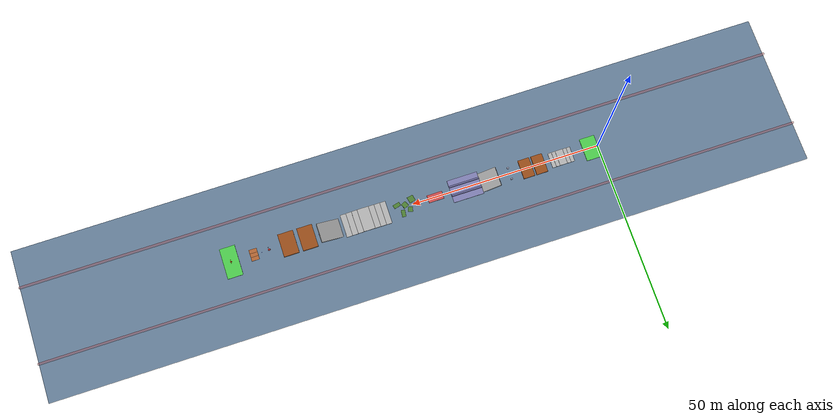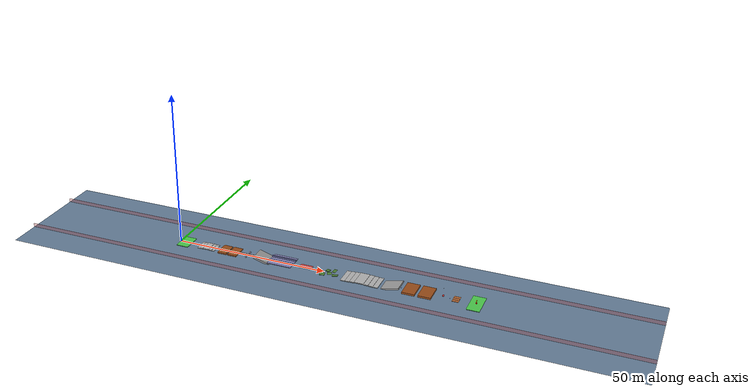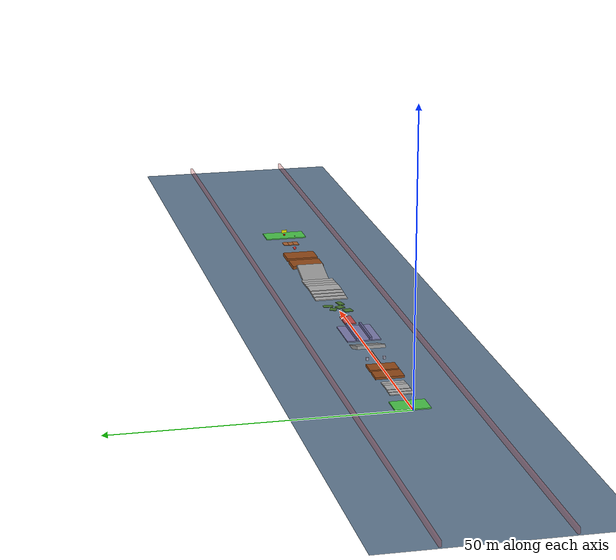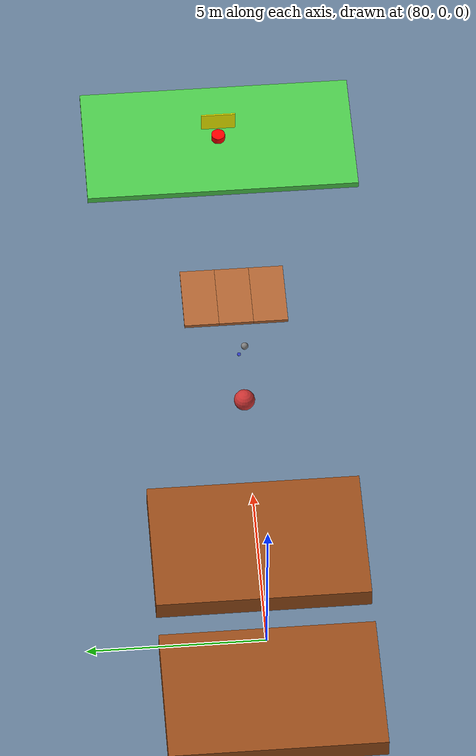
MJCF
<mujoco model="parkour_course">
  <compiler angle="radian" coordinate="local" inertiafromgeom="true"/>

  <option timestep="0.001" iterations="50" solver="PGS" gravity="0 0 -9.81"/>

  <size nconmax="1000" njmax="5000" nstack="1000000"/>

  <default>
    <geom conaffinity="1" contype="1" density="1000" friction="0.8 0.1 0.1"/>
    <joint armature="0" damping="0" limited="false"/>
  </default>

  <asset>
    <texture builtin="gradient" height="100" rgb1="0.4 0.6 1" rgb2="0 0 0.4" type="skybox" width="100"/>
    <texture builtin="flat" height="1278" mark="cross" markrgb="1 1 1" name="texgeom" random="0.01" rgb1="0.8 0.6 0.4" rgb2="0.8 0.6 0.4" type="cube" width="127"/>
    <texture builtin="checker" height="100" name="texplane" rgb1="0.2 0.3 0.4" rgb2="0.1 0.2 0.3" type="2d" width="100"/>
    <texture builtin="flat" name="texwood" rgb1="0.6 0.3 0.1" type="2d" width="100" height="100"/>
    <texture builtin="flat" name="texmetal" rgb1="0.7 0.7 0.8" type="2d" width="100" height="100"/>
    <texture builtin="flat" name="texgrass" rgb1="0.2 0.6 0.2" type="2d" width="100" height="100"/>
    <texture builtin="flat" name="texconcrete" rgb1="0.6 0.6 0.6" type="2d" width="100" height="100"/>

    <material name="MatPlane" reflectance="0.3" shininess="1" specular="1" texrepeat="60 60" texture="texplane"/>
    <material name="MatWood" reflectance="0.1" shininess="0.1" specular="0.1" texrepeat="3 3" texture="texwood"/>
    <material name="MatMetal" reflectance="0.8" shininess="1" specular="1" texrepeat="1 1" texture="texmetal"/>
    <material name="MatGrass" reflectance="0.1" shininess="0.1" specular="0.1" texrepeat="10 10" texture="texgrass"/>
    <material name="MatConcrete" reflectance="0.2" shininess="0.3" specular="0.3" texrepeat="5 5" texture="texconcrete"/>
  </asset>

  <worldbody>
    <light cutoff="100" diffuse="1 1 1" dir="-0.2 -0.2 -1" directional="true" exponent="1" pos="0 0 3" specular=".3 .3 .3"/>
    <light cutoff="50" diffuse="0.8 0.8 1" dir="0.5 0.5 -1" directional="true" exponent="1" pos="50 0 2" specular=".2 .2 .3"/>

    <!-- Main ground plane -->
    <geom conaffinity="1" condim="3" material="MatPlane" name="course_floor" pos="50 0 0" rgba="0.4 0.5 0.6 1" size="100 20 0.125" type="plane"/>

    <!-- Starting platform -->
    <geom name="start_platform" type="box" pos="2 0 0.1" size="2 3 0.1" material="MatConcrete" rgba="0.3 0.8 0.3 1"/>
    <geom name="start_marker" type="cylinder" pos="2 0 0.25" size="0.1 0.05" rgba="0 1 0 1"/>

    <!-- Obstacle 1: Small stairs -->
    <geom name="stair1_1" type="box" pos="8 0 0.075" size="1 2 0.075" material="MatConcrete" rgba="0.7 0.7 0.7 1"/>
    <geom name="stair1_2" type="box" pos="9 0 0.15" size="1 2 0.075" material="MatConcrete" rgba="0.7 0.7 0.7 1"/>
    <geom name="stair1_3" type="box" pos="10 0 0.225" size="1 2 0.075" material="MatConcrete" rgba="0.7 0.7 0.7 1"/>
    <geom name="stair1_4" type="box" pos="11 0 0.15" size="1 2 0.075" material="MatConcrete" rgba="0.7 0.7 0.7 1"/>
    <geom name="stair1_5" type="box" pos="12 0 0.075" size="1 2 0.075" material="MatConcrete" rgba="0.7 0.7 0.7 1"/>

    <!-- Obstacle 2: Gap jump -->
    <geom name="gap_platform1" type="box" pos="16 0 0.2" size="1.5 2.5 0.2" material="MatWood" rgba="0.6 0.3 0.1 1"/>
    <geom name="gap_platform2" type="box" pos="19.5 0 0.2" size="1.5 2.5 0.2" material="MatWood" rgba="0.6 0.3 0.1 1"/>

    <!-- Obstacle 3: Balance beam -->
    <geom name="beam_support1" type="box" pos="24 -1.5 0.25" size="0.2 0.2 0.25" material="MatMetal" rgba="0.7 0.7 0.8 1"/>
    <geom name="beam_support2" type="box" pos="24 1.5 0.25" size="0.2 0.2 0.25" material="MatMetal" rgba="0.7 0.7 0.8 1"/>
    <geom name="balance_beam" type="box" pos="24 0 0.5" size="3 0.05 0.05" material="MatWood" rgba="0.8 0.4 0.2 1"/>

    <!-- Obstacle 4: Ramp up -->
    <geom name="ramp_up" type="box" pos="30 0 0.3" size="3 2.5 0.3" material="MatConcrete" rgba="0.6 0.6 0.6 1" euler="0 0.3 0"/>

    <!-- Obstacle 5: Elevated platform with narrow passage -->
    <geom name="elevated_platform" type="box" pos="36 0 0.6" size="4 3 0.1" material="MatConcrete" rgba="0.5 0.5 0.7 1"/>
    <geom name="wall_left" type="box" pos="36 1.2 0.9" size="4 0.2 0.3" material="MatConcrete" rgba="0.4 0.4 0.6 1"/>
    <geom name="wall_right" type="box" pos="36 -1.2 0.9" size="4 0.2 0.3" material="MatConcrete" rgba="0.4 0.4 0.6 1"/>

    <!-- Obstacle 6: Moving platform (static for now, will be animated in code) -->
    <body name="moving_platform" pos="44 0 0.3">
      <joint name="platform_slide" type="slide" axis="0 1 0" range="-2 2" damping="10"/>
      <geom name="moving_plat_geom" type="box" size="2 1 0.1" material="MatMetal" rgba="0.8 0.3 0.3 1"/>
      <inertial pos="0 0 0" mass="100" diaginertia="10 10 10"/>
    </body>

    <!-- Obstacle 7: Rough terrain -->
    <geom name="rough1" type="box" pos="50 -1.5 0.05" size="0.8 0.8 0.05" material="MatGrass" rgba="0.3 0.5 0.2 1" euler="0 0 0.2"/>
    <geom name="rough2" type="box" pos="51 1 0.08" size="0.6 0.6 0.08" material="MatGrass" rgba="0.3 0.5 0.2 1" euler="0 0 -0.3"/>
    <geom name="rough3" type="box" pos="52 -0.5 0.06" size="0.7 0.7 0.06" material="MatGrass" rgba="0.3 0.5 0.2 1" euler="0 0 0.4"/>
    <geom name="rough4" type="box" pos="53 1.5 0.04" size="0.5 0.9 0.04" material="MatGrass" rgba="0.3 0.5 0.2 1" euler="0 0 -0.1"/>
    <geom name="rough5" type="box" pos="54 -1 0.07" size="0.9 0.5 0.07" material="MatGrass" rgba="0.3 0.5 0.2 1" euler="0 0 0.25"/>

    <!-- Obstacle 8: Large stairs -->
    <geom name="big_stair1" type="box" pos="58 0 0.1" size="1.5 3 0.1" material="MatConcrete" rgba="0.7 0.7 0.7 1"/>
    <geom name="big_stair2" type="box" pos="59.5 0 0.2" size="1.5 3 0.1" material="MatConcrete" rgba="0.7 0.7 0.7 1"/>
    <geom name="big_stair3" type="box" pos="61 0 0.3" size="1.5 3 0.1" material="MatConcrete" rgba="0.7 0.7 0.7 1"/>
    <geom name="big_stair4" type="box" pos="62.5 0 0.4" size="1.5 3 0.1" material="MatConcrete" rgba="0.7 0.7 0.7 1"/>
    <geom name="big_stair5" type="box" pos="64 0 0.3" size="1.5 3 0.1" material="MatConcrete" rgba="0.7 0.7 0.7 1"/>
    <geom name="big_stair6" type="box" pos="65.5 0 0.2" size="1.5 3 0.1" material="MatConcrete" rgba="0.7 0.7 0.7 1"/>
    <geom name="big_stair7" type="box" pos="67 0 0.1" size="1.5 3 0.1" material="MatConcrete" rgba="0.7 0.7 0.7 1"/>

    <!-- Obstacle 9: Ramp down -->
    <geom name="ramp_down" type="box" pos="72 0 0.25" size="3 2.5 0.25" material="MatConcrete" rgba="0.6 0.6 0.6 1" euler="0 -0.25 0"/>

    <!-- Obstacle 10: Final gap -->
    <geom name="final_platform1" type="box" pos="78 0 0.3" size="2 3 0.3" material="MatWood" rgba="0.6 0.3 0.1 1"/>
    <geom name="final_platform2" type="box" pos="83 0 0.3" size="2 3 0.3" material="MatWood" rgba="0.6 0.3 0.1 1"/>

    <!-- Obstacle 11: Swinging pendulum (static for now) -->
    <body name="pendulum_anchor" pos="88 0 3">
      <geom name="anchor" type="sphere" size="0.1" rgba="0.5 0.5 0.5 1"/>
      <body name="pendulum_bob" pos="0 0 -2.5">
        <joint name="pendulum_swing" type="hinge" axis="0 1 0" range="-1.57 1.57" damping="0.1"/>
        <geom name="bob" type="sphere" size="0.3" material="MatMetal" rgba="0.8 0.2 0.2 1"/>
        <inertial pos="0 0 0" mass="50" diaginertia="5 5 5"/>
      </body>
    </body>

    <!-- Obstacle 12: Collapsing bridge (static for now) -->
    <body name="bridge_section1" pos="92 -1 0.2">
      <joint name="bridge1_hinge" type="hinge" axis="0 1 0" range="-0.5 0.5" damping="5"/>
      <geom name="bridge1" type="box" size="1 0.5 0.05" material="MatWood" rgba="0.7 0.4 0.2 1"/>
      <inertial pos="0 0 0" mass="20" diaginertia="2 2 2"/>
    </body>
    <body name="bridge_section2" pos="92 0 0.2">
      <joint name="bridge2_hinge" type="hinge" axis="0 1 0" range="-0.5 0.5" damping="5"/>
      <geom name="bridge2" type="box" size="1 0.5 0.05" material="MatWood" rgba="0.7 0.4 0.2 1"/>
      <inertial pos="0 0 0" mass="20" diaginertia="2 2 2"/>
    </body>
    <body name="bridge_section3" pos="92 1 0.2">
      <joint name="bridge3_hinge" type="hinge" axis="0 1 0" range="-0.5 0.5" damping="5"/>
      <geom name="bridge3" type="box" size="1 0.5 0.05" material="MatWood" rgba="0.7 0.4 0.2 1"/>
      <inertial pos="0 0 0" mass="20" diaginertia="2 2 2"/>
    </body>

    <!-- Finish line -->
    <geom name="finish_platform" type="box" pos="98 0 0.1" size="2 4 0.1" material="MatConcrete" rgba="0.3 0.8 0.3 1"/>
    <geom name="finish_marker" type="cylinder" pos="98 0 0.3" size="0.2 0.1" rgba="1 0 0 1"/>
    <geom name="finish_flag" type="box" pos="98 0 1" size="0.02 0.5 0.3" rgba="1 1 0 1"/>

    <!-- Side barriers -->
    <geom name="barrier_left" type="box" pos="50 -10 0.5" size="100 0.2 0.5" rgba="0.8 0.2 0.2 0.3"/>
    <geom name="barrier_right" type="box" pos="50 10 0.5" size="100 0.2 0.5" rgba="0.8 0.2 0.2 0.3"/>

    <!-- Checkpoints for progress tracking -->
    <geom name="checkpoint1" type="cylinder" pos="15 0 0.05" size="0.05 0.02" rgba="0 0 1 0.5"/>
    <geom name="checkpoint2" type="cylinder" pos="30 0 0.05" size="0.05 0.02" rgba="0 0 1 0.5"/>
    <geom name="checkpoint3" type="cylinder" pos="45 0 0.05" size="0.05 0.02" rgba="0 0 1 0.5"/>
    <geom name="checkpoint4" type="cylinder" pos="60 0 0.05" size="0.05 0.02" rgba="0 0 1 0.5"/>
    <geom name="checkpoint5" type="cylinder" pos="75 0 0.05" size="0.05 0.02" rgba="0 0 1 0.5"/>
    <geom name="checkpoint6" type="cylinder" pos="90 0 0.05" size="0.05 0.02" rgba="0 0 1 0.5"/>
  </worldbody>

  <actuator>
    <!-- Moving platform actuator -->
    <motor name="platform_motor" joint="platform_slide" gear="100" ctrlrange="-100 100"/>

    <!-- Pendulum actuator (for controlled swinging) -->
    <motor name="pendulum_motor" joint="pendulum_swing" gear="200" ctrlrange="-200 200"/>

    <!-- Bridge section actuators -->
    <motor name="bridge1_motor" joint="bridge1_hinge" gear="50" ctrlrange="-50 50"/>
    <motor name="bridge2_motor" joint="bridge2_hinge" gear="50" ctrlrange="-50 50"/>
    <motor name="bridge3_motor" joint="bridge3_hinge" gear="50" ctrlrange="-50 50"/>
  </actuator>
</mujoco>
